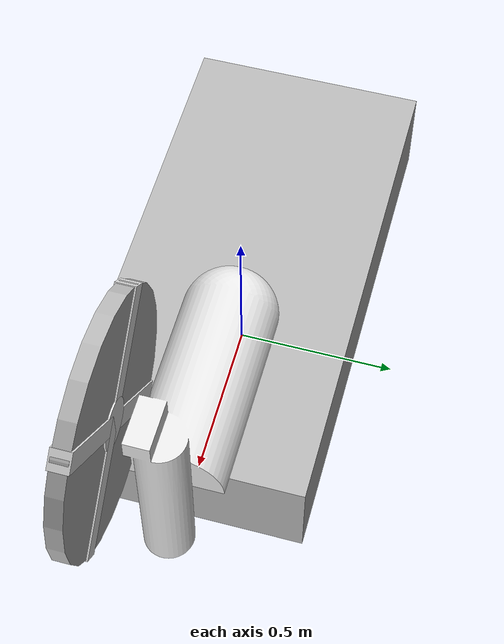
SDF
<?xml version="1.0"?>
<sdf version="1.6">
  <model name="Task7_model">
    <static>true</static>
    <pose>0 0 0 1.57 0 1.57</pose>

    <link name="Base">
    <pose>0 0 0 -1.57 0 0</pose>
      <collision name="body_collision">
        <geometry>
          <box>
            <size>1 1 1</size>
          </box>
        </geometry>
      </collision>
      <visual name="base">
        <pose>0 0 0 0 0 0</pose>
        <geometry>
          <mesh>
            <uri>model://task7_model/meshes/SeaSentinel_TASK7_base.stl</uri>
            <scale>0.0001 0.0001 0.0001</scale>
          </mesh>
        </geometry>
        <material>
        <script>
            <uri>model://task7_model/materials/scripts</uri>
            <uri>model://task7_model/materials/textures</uri>
            <name>DockBase/Image</name>
        </script>
        </material>
      </visual>
    </link>

    <link name="Pipes">
      <pose>0 0 0 -1.57 0 0</pose>
      <collision name="body_collision">
        <geometry>
          <box>
            <size>1 1 1</size>
          </box>
        </geometry>
      </collision>
      <visual name="Pipes">
        <pose>0 0 0 0 0 0</pose>
        <geometry>
          <mesh>
            <uri>model://task7_model/meshes/SeaSentinel_TASK7_rest.stl</uri>
            <scale>0.0001 0.0001 0.0001</scale>
          </mesh>
        </geometry>
        <material>
        <script>
            <uri>file://media/materials/scripts/gazebo.material</uri>
            <name>Gazebo/White</name>
        </script>
        </material>
      </visual>
    </link>

  <model name="Target">
    <static>true</static>
    <pose>-0.05 -0.07 0 0 0 0</pose>
    <link name="target base">
      <pose>-0.1 0.8 0.8 0 1.57 0</pose>
      <collision name="body_collision">
        <geometry>
          <cylinder>
            <length>0.05</length>
            <radius>0.381</radius>
          </cylinder>
        </geometry>
      </collision>
      <visual name="target base">
        <geometry>
          <cylinder>
            <length>0.05</length>
            <radius>0.381</radius>
          </cylinder>
        </geometry>
        <material>
        <script>
            <uri>model://task7_model/materials/scripts</uri>
            <uri>model://task7_model/materials/textures</uri>
            <name>Target/Image</name>
        </script>
        </material>
      </visual>
    </link>

    <link name="Target whole">
      <pose>-0.1 0.8 0.8 0 1.57 0</pose>
      <collision name="body_collision">
        <geometry>
          <cylinder>
            <length>0.06</length>
            <radius>0.075</radius>
          </cylinder>
        </geometry>
      </collision>
      <visual name="target whole">
        <geometry>
          <cylinder>
            <length>0.06</length>
            <radius>0.075</radius>
          </cylinder>
        </geometry>
        <material>
          <script>
            <uri>file://media/materials/scripts/gazebo.material</uri>
            <name>Gazebo/White</name>
          </script>
        </material>
      </visual>
    </link>

    <link name="Target Stripe">
      <pose>-0.1 0.8 0.8 0.785 0 0</pose>
      <collision name="body_collision">
        <geometry>
          <box>
            <size>0.06 0.76 0.06</size>
          </box>
        </geometry>
      </collision>
      <visual name="target stripe">
        <geometry>
          <box>
            <size>0.06 0.76 0.06</size>
          </box>
        </geometry>
        <material>
          <script>
            <uri>file://media/materials/scripts/gazebo.material</uri>
            <name>Gazebo/White</name>
          </script>
        </material>
      </visual>
    </link>

    <link name="Target stripe 2">
      <pose>-0.1 0.8 0.8 -0.785 0 0</pose>
      <collision name="body_collision">
        <geometry>
          <box>
            <size>0.06 0.76 0.06</size>
          </box>
        </geometry>
      </collision>
      <visual name="target stripe 2">
        <geometry>
          <box>
            <size>0.06 0.76 0.06</size>
          </box>
        </geometry>
        <material>
          <script>
            <uri>file://media/materials/scripts/gazebo.material</uri>
            <name>Gazebo/White</name>
          </script>
        </material>
      </visual>
    </link>
  </model>
  </model>
</sdf>
